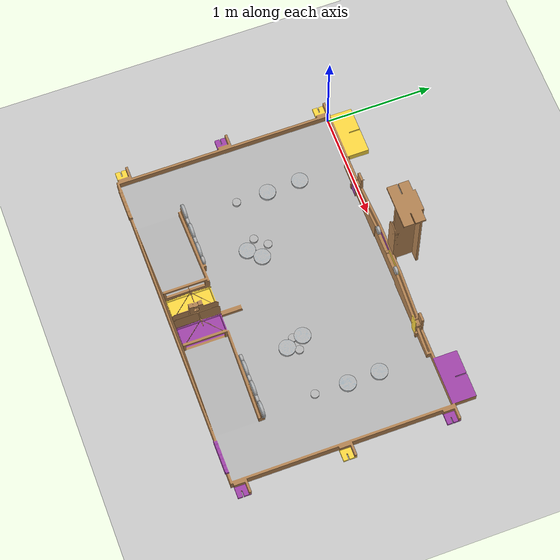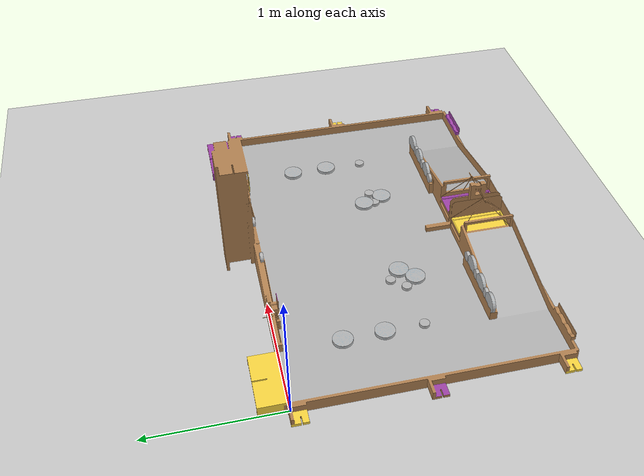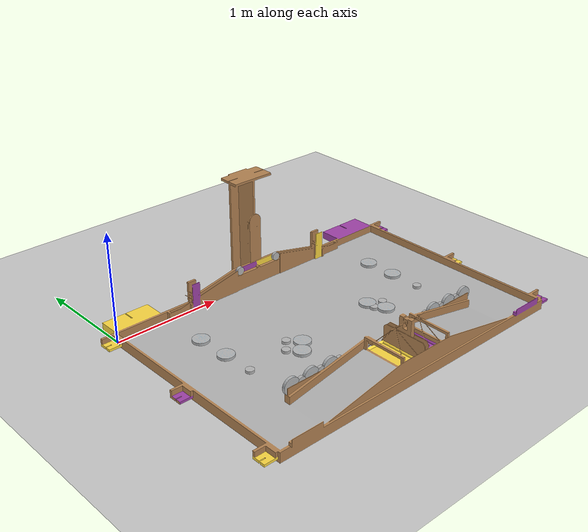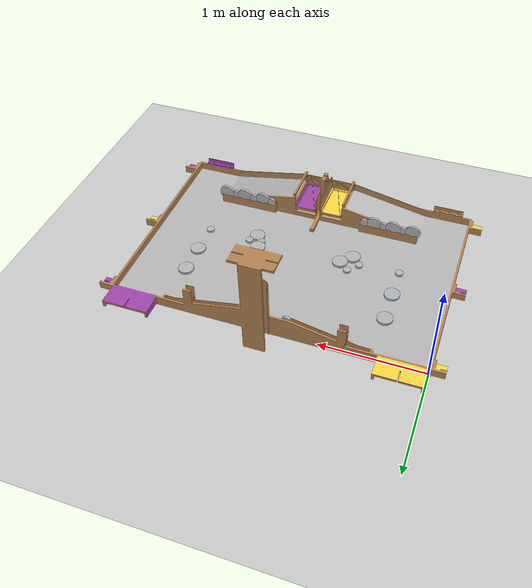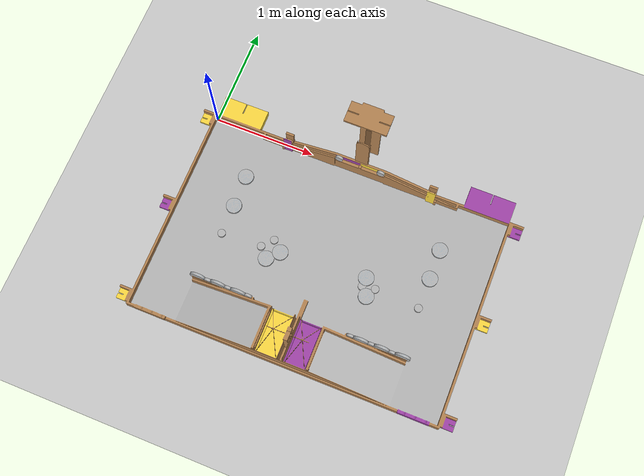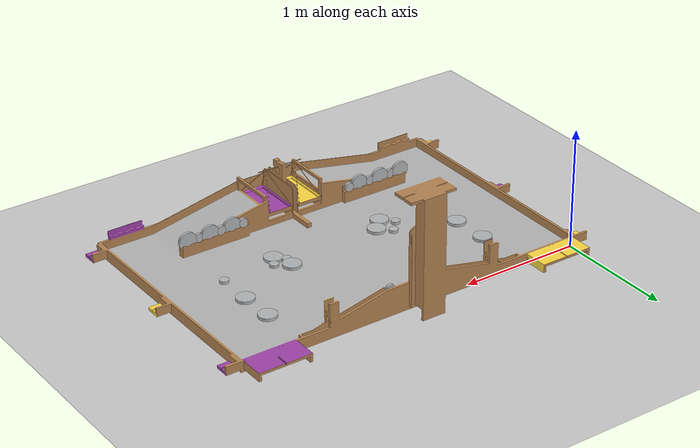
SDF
<sdf version="1.6">
 <world name="default">
  <light name="sun" type="directional">
   <pose>0 0 10 0 -0 0</pose>
   <diffuse>0.8 0.8 0.8 1</diffuse>
   <specular>0.1 0.1 0.1 1</specular>
   <attenuation>
    <range>1000</range>
    <constant>0.9</constant>
    <linear>0.01</linear>
    <quadratic>0.001</quadratic>
   </attenuation>
   <direction>-0.5 0.5 -1</direction>
  </light>
  <model name="ground_plane">
   <static>1</static>
   <link name="link">
    <collision name="collision">
     <geometry><plane><normal>0 0 1</normal><size>100 100</size></plane></geometry>
     <surface><friction><ode><mu>100</mu><mu2>50</mu2></ode></friction></surface>
    </collision>
    <visual name="visual">
     <cast_shadows>0</cast_shadows>
     <geometry><plane><normal>0 0 1</normal><size>100 100</size></plane></geometry>
     <material>
      <script><uri>file://media/materials/scripts/gazebo.material</uri><name>Gazebo/Grey</name></script>
     </material>
    </visual>
   </link>
  </model>
  <gravity>0 0 -9.8</gravity>
  <magnetic_field>6e-06 2.3e-05 -4.2e-05</magnetic_field>
  <atmosphere type="adiabatic"/>
  <physics name="default_physics" default="0" type="ode">
   <max_step_size>0.001</max_step_size>
   <real_time_factor>1</real_time_factor>
   <real_time_update_rate>1000</real_time_update_rate>
  </physics>
  <scene><ambient>0.4 0.4 0.4 1</ambient><background>0.7 0.7 0.7 1</background><shadows>1</shadows></scene>
  <spherical_coordinates>
   <surface_model>EARTH_WGS84</surface_model>
   <latitude_deg>0</latitude_deg>
   <longitude_deg>0</longitude_deg>
   <elevation>0</elevation>
   <heading_deg>0</heading_deg>
  </spherical_coordinates>
  <model name="eurobot2019">
   <link name="base_link">
    <inertial>
     <pose>1.5 -0.97131 0.064683 0 -0 0</pose>
     <mass>217.15</mass>
     <inertia>
      <ixx>117.72</ixx>
      <ixy>0.001115</ixy>
      <ixz>8.0681e-05</ixz>
      <iyy>162.37</iyy>
      <iyz>-6.3727</iyz>
      <izz>270.51</izz>
     </inertia>
    </inertial>
    <collision name="base_link_collision">
     <geometry>
      <mesh>
       <scale>1 1 1</scale>
       <uri>/home/parallels/catkin_ws/src/ros_eurobot2019/gazebo/eurobot2019/meshes/base_link1.dae</uri>
      </mesh>
     </geometry>
    </collision>
    <visual name="base_link_visual">
     <geometry>
      <mesh>
       <scale>1 1 1</scale>
       <uri>/home/parallels/catkin_ws/src/ros_eurobot2019/gazebo/eurobot2019/meshes/base_link1.dae</uri>
      </mesh>
     </geometry>
    </visual>
   </link>
   <joint name="world_fixed" type="revolute">
    <child>base_link</child>
    <parent>world</parent>
    <axis>
     <limit><lower>0</lower><upper>0</upper></limit>
     <dynamics>
      <damping>0</damping>
      <friction>0</friction>
      <spring_reference>0</spring_reference>
      <spring_stiffness>0</spring_stiffness>
     </dynamics>
     <use_parent_model_frame>1</use_parent_model_frame>
     <xyz>0 0 1</xyz>
    </axis>
   </joint>
  </model>
  <light name="user_point_light_0" type="point">
   <pose>1.47415 -0.781974 1 0 -0 0</pose>
   <diffuse>0.5 0.5 0.5 1</diffuse>
   <specular>0.1 0.1 0.1 1</specular>
   <attenuation>
    <range>20</range>
    <constant>0.5</constant>
    <linear>0.01</linear>
    <quadratic>0.001</quadratic>
   </attenuation>
   <cast_shadows>0</cast_shadows>
   <direction>0 0 -1</direction>
  </light>
  <light name="user_directional_light_0" type="directional">
   <pose>0.430567 1.39142 1 0 -0 0</pose>
   <diffuse>0.5 0.5 0.5 1</diffuse>
   <specular>0.1 0.1 0.1 1</specular>
   <direction>0.1 0.1 -0.9</direction>
   <attenuation>
    <range>20</range>
    <constant>0.5</constant>
    <linear>0.01</linear>
    <quadratic>0.001</quadratic>
   </attenuation>
  </light>
  <model name="atom1">
   <link name="link">
    <pose>0 0 0.0125 0 -0 0</pose>
    <inertial>
     <pose>0 0 0.0125 0 -0 0</pose>
     <mass>0.06</mass>
     <inertia><ixx>0.0005</ixx><ixy>0</ixy><ixz>0</ixz><iyy>0.0005</iyy><iyz>0</iyz><izz>0.0001</izz></inertia>
    </inertial>
    <collision name="collision">
     <geometry><mesh><uri>model://atom1/meshes/atom1.dae</uri><scale>1 1 1</scale></mesh></geometry>
    </collision>
    <visual name="visual">
     <geometry><mesh><uri>model://atom1/meshes/atom1.dae</uri><scale>1 1 1</scale></mesh></geometry>
    </visual>
   </link>
   <pose>0.996863 -1.14326 0.01 1e-06 2e-06 -0.000594</pose>
  </model>
  <model name="atom1_0">
   <link name="link">
    <pose>0 0 0.0125 0 -0 0</pose>
    <inertial>
     <pose>0 0 0.0125 0 -0 0</pose>
     <mass>0.06</mass>
     <inertia><ixx>0.0005</ixx><ixy>0</ixy><ixz>0</ixz><iyy>0.0005</iyy><iyz>0</iyz><izz>0.0001</izz></inertia>
    </inertial>
    <collision name="collision">
     <geometry><mesh><uri>model://atom1/meshes/atom1.dae</uri><scale>1 1 1</scale></mesh></geometry>
    </collision>
    <visual name="visual">
     <geometry><mesh><uri>model://atom1/meshes/atom1.dae</uri><scale>1 1 1</scale></mesh></geometry>
    </visual>
   </link>
   <pose>1.09812 -1.03946 0.01 -5e-06 1.9e-05 0.001751</pose>
  </model>
  <model name="atom2">
   <link name="link">
    <pose>0 0 0.0125 0 -0 0</pose>
    <inertial>
     <pose>0 0 0.0125 0 -0 0</pose>
     <mass>0.12</mass>
     <inertia><ixx>0.0005</ixx><ixy>0</ixy><ixz>0</ixz><iyy>0.0005</iyy><iyz>0</iyz><izz>0.0001</izz></inertia>
    </inertial>
    <collision name="collision">
     <geometry><mesh><uri>model://atom2/meshes/atom2.dae</uri><scale>1 1 1</scale></mesh></geometry>
    </collision>
    <visual name="visual">
     <geometry><mesh><uri>model://atom2/meshes/atom2.dae</uri><scale>1 1 1</scale></mesh></geometry>
    </visual>
   </link>
   <pose>0.907861 -1.0508 0.01 4e-06 -1e-06 4.1e-05</pose>
  </model>
  <model name="atom3">
   <link name="link">
    <pose>0 0 0.0125 0 -0 0</pose>
    <inertial>
     <pose>0 0 0.0125 0 -0 0</pose>
     <mass>0.17</mass>
     <inertia><ixx>0.0005</ixx><ixy>0</ixy><ixz>0</ixz><iyy>0.0005</iyy><iyz>0</iyz><izz>0.0001</izz></inertia>
    </inertial>
    <collision name="collision">
     <geometry><mesh><uri>model://atom3/meshes/atom3.dae</uri><scale>1 1 1</scale></mesh></geometry>
    </collision>
    <visual name="visual">
     <geometry><mesh><uri>model://atom3/meshes/atom3.dae</uri><scale>1 1 1</scale></mesh></geometry>
    </visual>
   </link>
   <pose>0.999714 -0.94896 0.010001 1e-06 2.9e-05 -0.002305</pose>
  </model>
  <model name="atom1_1">
   <link name="link">
    <pose>0 0 0.0125 0 -0 0</pose>
    <inertial>
     <pose>0 0 0.0125 0 -0 0</pose>
     <mass>0.06</mass>
     <inertia><ixx>0.0005</ixx><ixy>0</ixy><ixz>0</ixz><iyy>0.0005</iyy><iyz>0</iyz><izz>0.0001</izz></inertia>
    </inertial>
    <collision name="collision">
     <geometry><mesh><uri>model://atom1/meshes/atom1.dae</uri><scale>1 1 1</scale></mesh></geometry>
    </collision>
    <visual name="visual">
     <geometry><mesh><uri>model://atom1/meshes/atom1.dae</uri><scale>1 1 1</scale></mesh></geometry>
    </visual>
   </link>
   <pose>1.99692 -1.1361 0.01 7e-06 -4e-06 -0.001459</pose>
  </model>
  <model name="atom1_2">
   <link name="link">
    <pose>0 0 0.0125 0 -0 0</pose>
    <inertial>
     <pose>0 0 0.0125 0 -0 0</pose>
     <mass>0.06</mass>
     <inertia><ixx>0.0005</ixx><ixy>0</ixy><ixz>0</ixz><iyy>0.0005</iyy><iyz>0</iyz><izz>0.0001</izz></inertia>
    </inertial>
    <collision name="collision">
     <geometry><mesh><uri>model://atom1/meshes/atom1.dae</uri><scale>1 1 1</scale></mesh></geometry>
    </collision>
    <visual name="visual">
     <geometry><mesh><uri>model://atom1/meshes/atom1.dae</uri><scale>1 1 1</scale></mesh></geometry>
    </visual>
   </link>
   <pose>1.93516 -0.971489 0.01 2e-06 -2e-06 0.001151</pose>
  </model>
  <model name="atom2_0">
   <link name="link">
    <pose>0 0 0.0125 0 -0 0</pose>
    <inertial>
     <pose>0 0 0.0125 0 -0 0</pose>
     <mass>0.12</mass>
     <inertia><ixx>0.0005</ixx><ixy>0</ixy><ixz>0</ixz><iyy>0.0005</iyy><iyz>0</iyz><izz>0.0001</izz></inertia>
    </inertial>
    <collision name="collision">
     <geometry><mesh><uri>model://atom2/meshes/atom2.dae</uri><scale>1 1 1</scale></mesh></geometry>
    </collision>
    <visual name="visual">
     <geometry><mesh><uri>model://atom2/meshes/atom2.dae</uri><scale>1 1 1</scale></mesh></geometry>
    </visual>
   </link>
   <pose>1.9265 -1.06087 0.009992 -6e-06 3.5e-05 0.003952</pose>
  </model>
  <model name="atom3_0">
   <link name="link">
    <pose>0 0 0.0125 0 -0 0</pose>
    <inertial>
     <pose>0 0 0.0125 0 -0 0</pose>
     <mass>0.17</mass>
     <inertia><ixx>0.0005</ixx><ixy>0</ixy><ixz>0</ixz><iyy>0.0005</iyy><iyz>0</iyz><izz>0.0001</izz></inertia>
    </inertial>
    <collision name="collision">
     <geometry><mesh><uri>model://atom3/meshes/atom3.dae</uri><scale>1 1 1</scale></mesh></geometry>
    </collision>
    <visual name="visual">
     <geometry><mesh><uri>model://atom3/meshes/atom3.dae</uri><scale>1 1 1</scale></mesh></geometry>
    </visual>
   </link>
   <pose>2.05045 -1.04281 0.010003 1.1e-05 -8.3e-05 0.002983</pose>
  </model>
  <model name="atom1_3">
   <link name="link">
    <pose>0 0 0.0125 0 -0 0</pose>
    <inertial>
     <pose>0 0 0.0125 0 -0 0</pose>
     <mass>0.06</mass>
     <inertia><ixx>0.0005</ixx><ixy>0</ixy><ixz>0</ixz><iyy>0.0005</iyy><iyz>0</iyz><izz>0.0001</izz></inertia>
    </inertial>
    <collision name="collision">
     <geometry><mesh><uri>model://atom1/meshes/atom1.dae</uri><scale>1 1 1</scale></mesh></geometry>
    </collision>
    <visual name="visual">
     <geometry><mesh><uri>model://atom1/meshes/atom1.dae</uri><scale>1 1 1</scale></mesh></geometry>
    </visual>
   </link>
   <pose>2.48224 -0.46698 0.009991 7e-06 6e-06 -0.002386</pose>
  </model>
  <model name="atom1_4">
   <link name="link">
    <pose>0 0 0.0125 0 -0 0</pose>
    <inertial>
     <pose>0 0 0.0125 0 -0 0</pose>
     <mass>0.06</mass>
     <inertia><ixx>0.0005</ixx><ixy>0</ixy><ixz>0</ixz><iyy>0.0005</iyy><iyz>0</iyz><izz>0.0001</izz></inertia>
    </inertial>
    <collision name="collision">
     <geometry><mesh><uri>model://atom1/meshes/atom1.dae</uri><scale>1 1 1</scale></mesh></geometry>
    </collision>
    <visual name="visual">
     <geometry><mesh><uri>model://atom1/meshes/atom1.dae</uri><scale>1 1 1</scale></mesh></geometry>
    </visual>
   </link>
   <pose>2.48784 -0.760976 0.01 1.2e-05 -2.7e-05 -0.000177</pose>
  </model>
  <model name="atom2_1">
   <link name="link">
    <pose>0 0 0.0125 0 -0 0</pose>
    <inertial>
     <pose>0 0 0.0125 0 -0 0</pose>
     <mass>0.12</mass>
     <inertia><ixx>0.0005</ixx><ixy>0</ixy><ixz>0</ixz><iyy>0.0005</iyy><iyz>0</iyz><izz>0.0001</izz></inertia>
    </inertial>
    <collision name="collision">
     <geometry><mesh><uri>model://atom2/meshes/atom2.dae</uri><scale>1 1 1</scale></mesh></geometry>
    </collision>
    <visual name="visual">
     <geometry><mesh><uri>model://atom2/meshes/atom2.dae</uri><scale>1 1 1</scale></mesh></geometry>
    </visual>
   </link>
   <pose>2.48376 -1.06227 0.01 -3e-06 -9e-06 0.00134</pose>
  </model>
  <model name="atom1_5">
   <link name="link">
    <pose>0 0 0.0125 0 -0 0</pose>
    <inertial>
     <pose>0 0 0.0125 0 -0 0</pose>
     <mass>0.06</mass>
     <inertia><ixx>0.0005</ixx><ixy>0</ixy><ixz>0</ixz><iyy>0.0005</iyy><iyz>0</iyz><izz>0.0001</izz></inertia>
    </inertial>
    <collision name="collision">
     <geometry><mesh><uri>model://atom1/meshes/atom1.dae</uri><scale>1 1 1</scale></mesh></geometry>
    </collision>
    <visual name="visual">
     <geometry><mesh><uri>model://atom1/meshes/atom1.dae</uri><scale>1 1 1</scale></mesh></geometry>
    </visual>
   </link>
   <pose>0.500771 -0.463804 0.01 1.1e-05 -2.5e-05 0.002291</pose>
  </model>
  <model name="atom1_6">
   <link name="link">
    <pose>0 0 0.0125 0 -0 0</pose>
    <inertial>
     <pose>0 0 0.0125 0 -0 0</pose>
     <mass>0.06</mass>
     <inertia><ixx>0.0005</ixx><ixy>0</ixy><ixz>0</ixz><iyy>0.0005</iyy><iyz>0</iyz><izz>0.0001</izz></inertia>
    </inertial>
    <collision name="collision">
     <geometry><mesh><uri>model://atom1/meshes/atom1.dae</uri><scale>1 1 1</scale></mesh></geometry>
    </collision>
    <visual name="visual">
     <geometry><mesh><uri>model://atom1/meshes/atom1.dae</uri><scale>1 1 1</scale></mesh></geometry>
    </visual>
   </link>
   <pose>0.511076 -0.775742 0.01 -7e-06 2.1e-05 0.000131</pose>
  </model>
  <model name="atom2_2">
   <link name="link">
    <pose>0 0 0.0125 0 -0 0</pose>
    <inertial>
     <pose>0 0 0.0125 0 -0 0</pose>
     <mass>0.12</mass>
     <inertia><ixx>0.0005</ixx><ixy>0</ixy><ixz>0</ixz><iyy>0.0005</iyy><iyz>0</iyz><izz>0.0001</izz></inertia>
    </inertial>
    <collision name="collision">
     <geometry><mesh><uri>model://atom2/meshes/atom2.dae</uri><scale>1 1 1</scale></mesh></geometry>
    </collision>
    <visual name="visual">
     <geometry><mesh><uri>model://atom2/meshes/atom2.dae</uri><scale>1 1 1</scale></mesh></geometry>
    </visual>
   </link>
   <pose>0.512122 -1.07071 0.010004 5.8e-05 -7.3e-05 0.000765</pose>
  </model>
  <model name="atom3_1">
   <link name="link">
    <pose>0 0 0.0125 0 -0 0</pose>
    <inertial>
     <pose>0 0 0.0125 0 -0 0</pose>
     <mass>0.17</mass>
     <inertia><ixx>0.0005</ixx><ixy>0</ixy><ixz>0</ixz><iyy>0.0005</iyy><iyz>0</iyz><izz>0.0001</izz></inertia>
    </inertial>
    <collision name="collision">
     <geometry><mesh><uri>model://atom3/meshes/atom3.dae</uri><scale>1 1 1</scale></mesh></geometry>
    </collision>
    <visual name="visual">
     <geometry><mesh><uri>model://atom3/meshes/atom3.dae</uri><scale>1 1 1</scale></mesh></geometry>
    </visual>
   </link>
   <pose>1.28978 0.008894 0.209359 1.57053 0.02697 -0.012401</pose>
  </model>
  <model name="atom3_2">
   <link name="link">
    <pose>0 0 0.0125 0 -0 0</pose>
    <inertial>
     <pose>0 0 0.0125 0 -0 0</pose>
     <mass>0.17</mass>
     <inertia><ixx>0.0005</ixx><ixy>0</ixy><ixz>0</ixz><iyy>0.0005</iyy><iyz>0</iyz><izz>0.0001</izz></inertia>
    </inertial>
    <collision name="collision">
     <geometry><mesh><uri>model://atom3/meshes/atom3.dae</uri><scale>1 1 1</scale></mesh></geometry>
    </collision>
    <visual name="visual">
     <geometry><mesh><uri>model://atom3/meshes/atom3.dae</uri><scale>1 1 1</scale></mesh></geometry>
    </visual>
   </link>
   <pose>1.70967 0.008842 0.209301 1.56717 0.024431 -0.020646</pose>
  </model>
  <model name="atom1_7">
   <link name="link">
    <pose>0 0 0.0125 0 -0 0</pose>
    <inertial>
     <pose>0 0 0.0125 0 -0 0</pose>
     <mass>0.06</mass>
     <inertia><ixx>0.0005</ixx><ixy>0</ixy><ixz>0</ixz><iyy>0.0005</iyy><iyz>0</iyz><izz>0.0001</izz></inertia>
    </inertial>
    <collision name="collision">
     <geometry><mesh><uri>model://atom1/meshes/atom1.dae</uri><scale>1 1 1</scale></mesh></geometry>
    </collision>
    <visual name="visual">
     <geometry><mesh><uri>model://atom1/meshes/atom1.dae</uri><scale>1 1 1</scale></mesh></geometry>
    </visual>
   </link>
   <pose>2.50005 -1.58188 0.150901 -1.57082 0.135304 -0.000157</pose>
  </model>
  <model name="atom2_3">
   <link name="link">
    <pose>0 0 0.0125 0 -0 0</pose>
    <inertial>
     <pose>0 0 0.0125 0 -0 0</pose>
     <mass>0.12</mass>
     <inertia><ixx>0.0005</ixx><ixy>0</ixy><ixz>0</ixz><iyy>0.0005</iyy><iyz>0</iyz><izz>0.0001</izz></inertia>
    </inertial>
    <collision name="collision">
     <geometry><mesh><uri>model://atom2/meshes/atom2.dae</uri><scale>1 1 1</scale></mesh></geometry>
    </collision>
    <visual name="visual">
     <geometry><mesh><uri>model://atom2/meshes/atom2.dae</uri><scale>1 1 1</scale></mesh></geometry>
    </visual>
   </link>
   <pose>2.4001 -1.58424 0.15089 -1.57083 -0.121819 -0.00017</pose>
  </model>
  <model name="atom1_8">
   <link name="link">
    <pose>0 0 0.0125 0 -0 0</pose>
    <inertial>
     <pose>0 0 0.0125 0 -0 0</pose>
     <mass>0.06</mass>
     <inertia><ixx>0.0005</ixx><ixy>0</ixy><ixz>0</ixz><iyy>0.0005</iyy><iyz>0</iyz><izz>0.0001</izz></inertia>
    </inertial>
    <collision name="collision">
     <geometry><mesh><uri>model://atom1/meshes/atom1.dae</uri><scale>1 1 1</scale></mesh></geometry>
    </collision>
    <visual name="visual">
     <geometry><mesh><uri>model://atom1/meshes/atom1.dae</uri><scale>1 1 1</scale></mesh></geometry>
    </visual>
   </link>
   <pose>2.30005 -1.58201 0.150901 -1.57082 -0.126574 -0.00015</pose>
  </model>
  <model name="atom3_3">
   <link name="link">
    <pose>0 0 0.0125 0 -0 0</pose>
    <inertial>
     <pose>0 0 0.0125 0 -0 0</pose>
     <mass>0.17</mass>
     <inertia><ixx>0.0005</ixx><ixy>0</ixy><ixz>0</ixz><iyy>0.0005</iyy><iyz>0</iyz><izz>0.0001</izz></inertia>
    </inertial>
    <collision name="collision">
     <geometry><mesh><uri>model://atom3/meshes/atom3.dae</uri><scale>1 1 1</scale></mesh></geometry>
    </collision>
    <visual name="visual">
     <geometry><mesh><uri>model://atom3/meshes/atom3.dae</uri><scale>1 1 1</scale></mesh></geometry>
    </visual>
   </link>
   <pose>2.20015 -1.58169 0.150889 -1.57078 -0.118001 8e-06</pose>
  </model>
  <model name="atom2_4">
   <link name="link">
    <pose>0 0 0.0125 0 -0 0</pose>
    <inertial>
     <pose>0 0 0.0125 0 -0 0</pose>
     <mass>0.12</mass>
     <inertia><ixx>0.0005</ixx><ixy>0</ixy><ixz>0</ixz><iyy>0.0005</iyy><iyz>0</iyz><izz>0.0001</izz></inertia>
    </inertial>
    <collision name="collision">
     <geometry><mesh><uri>model://atom2/meshes/atom2.dae</uri><scale>1 1 1</scale></mesh></geometry>
    </collision>
    <visual name="visual">
     <geometry><mesh><uri>model://atom2/meshes/atom2.dae</uri><scale>1 1 1</scale></mesh></geometry>
    </visual>
   </link>
   <pose>1.99999 -1.58138 0.150951 -1.5708 -0.057203 2e-06</pose>
  </model>
  <model name="atom1_9">
   <link name="link">
    <pose>0 0 0.0125 0 -0 0</pose>
    <inertial>
     <pose>0 0 0.0125 0 -0 0</pose>
     <mass>0.06</mass>
     <inertia><ixx>0.0005</ixx><ixy>0</ixy><ixz>0</ixz><iyy>0.0005</iyy><iyz>0</iyz><izz>0.0001</izz></inertia>
    </inertial>
    <collision name="collision">
     <geometry><mesh><uri>model://atom1/meshes/atom1.dae</uri><scale>1 1 1</scale></mesh></geometry>
    </collision>
    <visual name="visual">
     <geometry><mesh><uri>model://atom1/meshes/atom1.dae</uri><scale>1 1 1</scale></mesh></geometry>
    </visual>
   </link>
   <pose>2.10008 -1.58385 0.1509 -1.57081 0.137694 -9e-05</pose>
  </model>
  <model name="atom1_10">
   <link name="link">
    <pose>0 0 0.0125 0 -0 0</pose>
    <inertial>
     <pose>0 0 0.0125 0 -0 0</pose>
     <mass>0.06</mass>
     <inertia><ixx>0.0005</ixx><ixy>0</ixy><ixz>0</ixz><iyy>0.0005</iyy><iyz>0</iyz><izz>0.0001</izz></inertia>
    </inertial>
    <collision name="collision">
     <geometry><mesh><uri>model://atom1/meshes/atom1.dae</uri><scale>1 1 1</scale></mesh></geometry>
    </collision>
    <visual name="visual">
     <geometry><mesh><uri>model://atom1/meshes/atom1.dae</uri><scale>1 1 1</scale></mesh></geometry>
    </visual>
   </link>
   <pose>0.499969 -1.5823 0.150901 -1.57082 0.127733 -0.000145</pose>
  </model>
  <model name="atom2_5">
   <link name="link">
    <pose>0 0 0.0125 0 -0 0</pose>
    <inertial>
     <pose>0 0 0.0125 0 -0 0</pose>
     <mass>0.12</mass>
     <inertia><ixx>0.0005</ixx><ixy>0</ixy><ixz>0</ixz><iyy>0.0005</iyy><iyz>0</iyz><izz>0.0001</izz></inertia>
    </inertial>
    <collision name="collision">
     <geometry><mesh><uri>model://atom2/meshes/atom2.dae</uri><scale>1 1 1</scale></mesh></geometry>
    </collision>
    <visual name="visual">
     <geometry><mesh><uri>model://atom2/meshes/atom2.dae</uri><scale>1 1 1</scale></mesh></geometry>
    </visual>
   </link>
   <pose>0.600154 -1.58404 0.150896 -1.5708 -0.117735 4e-06</pose>
  </model>
  <model name="atom1_11">
   <link name="link">
    <pose>0 0 0.0125 0 -0 0</pose>
    <inertial>
     <pose>0 0 0.0125 0 -0 0</pose>
     <mass>0.06</mass>
     <inertia><ixx>0.0005</ixx><ixy>0</ixy><ixz>0</ixz><iyy>0.0005</iyy><iyz>0</iyz><izz>0.0001</izz></inertia>
    </inertial>
    <collision name="collision">
     <geometry><mesh><uri>model://atom1/meshes/atom1.dae</uri><scale>1 1 1</scale></mesh></geometry>
    </collision>
    <visual name="visual">
     <geometry><mesh><uri>model://atom1/meshes/atom1.dae</uri><scale>1 1 1</scale></mesh></geometry>
    </visual>
   </link>
   <pose>0.700148 -1.58197 0.150897 -1.57082 -0.117908 -0.000138</pose>
  </model>
  <model name="atom3_4">
   <link name="link">
    <pose>0 0 0.0125 0 -0 0</pose>
    <inertial>
     <pose>0 0 0.0125 0 -0 0</pose>
     <mass>0.17</mass>
     <inertia><ixx>0.0005</ixx><ixy>0</ixy><ixz>0</ixz><iyy>0.0005</iyy><iyz>0</iyz><izz>0.0001</izz></inertia>
    </inertial>
    <collision name="collision">
     <geometry><mesh><uri>model://atom3/meshes/atom3.dae</uri><scale>1 1 1</scale></mesh></geometry>
    </collision>
    <visual name="visual">
     <geometry><mesh><uri>model://atom3/meshes/atom3.dae</uri><scale>1 1 1</scale></mesh></geometry>
    </visual>
   </link>
   <pose>0.800013 -1.58277 0.150952 -1.57079 -0.19875 0</pose>
  </model>
  <model name="atom1_12">
   <link name="link">
    <pose>0 0 0.0125 0 -0 0</pose>
    <inertial>
     <pose>0 0 0.0125 0 -0 0</pose>
     <mass>0.06</mass>
     <inertia><ixx>0.0005</ixx><ixy>0</ixy><ixz>0</ixz><iyy>0.0005</iyy><iyz>0</iyz><izz>0.0001</izz></inertia>
    </inertial>
    <collision name="collision">
     <geometry><mesh><uri>model://atom1/meshes/atom1.dae</uri><scale>1 1 1</scale></mesh></geometry>
    </collision>
    <visual name="visual">
     <geometry><mesh><uri>model://atom1/meshes/atom1.dae</uri><scale>1 1 1</scale></mesh></geometry>
    </visual>
   </link>
   <pose>0.90012 -1.58405 0.150898 -1.5708 -0.12089 -6e-06</pose>
  </model>
  <model name="atom2_6">
   <link name="link">
    <pose>0 0 0.0125 0 -0 0</pose>
    <inertial>
     <pose>0 0 0.0125 0 -0 0</pose>
     <mass>0.12</mass>
     <inertia><ixx>0.0005</ixx><ixy>0</ixy><ixz>0</ixz><iyy>0.0005</iyy><iyz>0</iyz><izz>0.0001</izz></inertia>
    </inertial>
    <collision name="collision">
     <geometry><mesh><uri>model://atom2/meshes/atom2.dae</uri><scale>1 1 1</scale></mesh></geometry>
    </collision>
    <visual name="visual">
     <geometry><mesh><uri>model://atom2/meshes/atom2.dae</uri><scale>1 1 1</scale></mesh></geometry>
    </visual>
   </link>
   <pose>1.00004 -1.58083 0.150901 -1.57083 -0.65122 -0.000121</pose>
  </model>
 </world>
</sdf>
